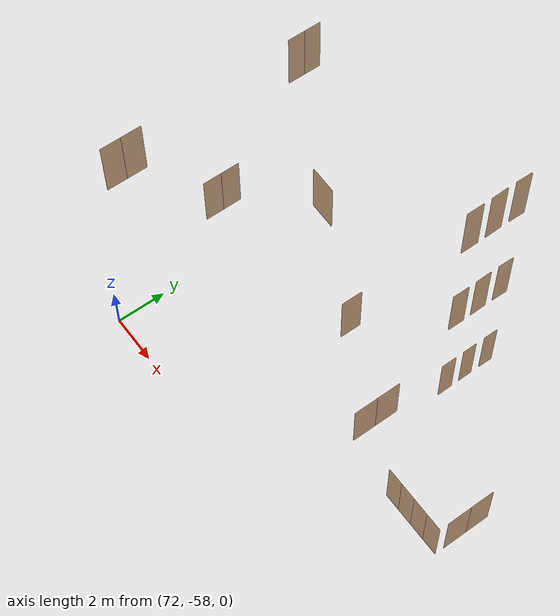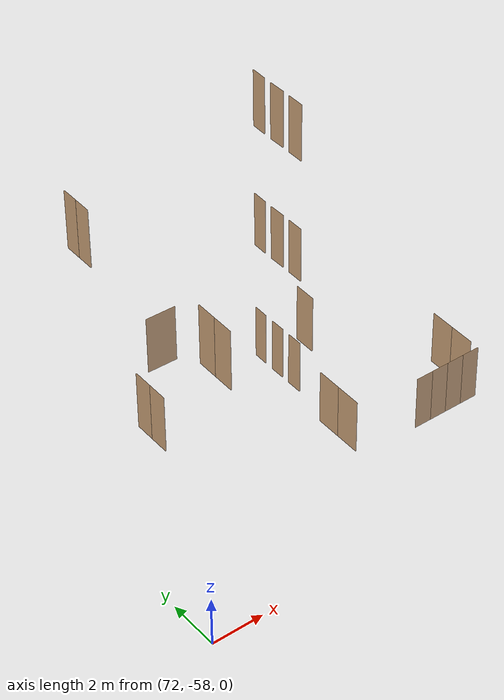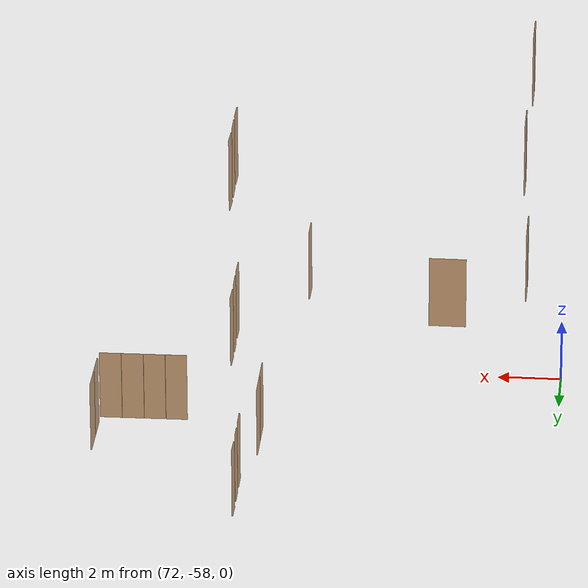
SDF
<sdf version="1.7">
 <world name="sim_world">
  <model name="p85">
   <pose>81.5161958164203 -48.06958682705701 0.0 0 0 1.555900200698381</pose>
   <link name="right">
    <pose>0 0 1.11 0 0 0</pose>
    <visual name="right_visual">
     <geometry><box><size>0.5792701410174352 0.03 2.2</size></box></geometry>
     <material>
      <ambient>0.5 0.25 0 0.6</ambient>
      <diffuse>0.5 0.25 0 0.6</diffuse>
      <pbr><metal><metalness>0.0</metalness></metal></pbr>
     </material>
    </visual>
    <collision name="right_collision">
     <geometry><box><size>0.5792701410174352 0.03 2.2</size></box></geometry>
     <surface><contact><collide_bitmask>0x02</collide_bitmask></contact></surface>
    </collision>
    <inertial>
     <mass>50.0</mass>
     <inertia><ixx>20.17041666666667</ixx><iyy>21.56480790114317</iyy><izz>1.4018912344764973</izz></inertia>
    </inertial>
   </link>
   <joint name="right_joint" type="revolute">
    <parent>world</parent>
    <child>right</child>
    <axis><xyz>0 0 -1</xyz><limit><lower>0</lower><upper>1.57</upper></limit></axis>
    <pose>0.2946350705087176 0 0 0 0 0</pose>
   </joint>
   <plugin name="register_component" filename="libregister_component.so">
    <component name="Door">
     <v_max_door>0.5</v_max_door>
     <a_max_door>0.3</a_max_door>
     <a_nom_door>0.15</a_nom_door>
     <dx_min_door>0.01</dx_min_door>
     <f_max_door>500.0</f_max_door>
     <ros_interface>true</ros_interface>
     <door name="p85" type="SwingDoor" left_joint_name="empty_joint" right_joint_name="right_joint"/>
    </component>
   </plugin>
  </model>
  <model name="p86">
   <pose>81.51474030399105 -49.03233607893103 0.0 0 0 1.580727906492834</pose>
   <link name="right">
    <pose>0 0 1.11 0 0 0</pose>
    <visual name="right_visual">
     <geometry><box><size>0.5807005195245211 0.03 2.2</size></box></geometry>
     <material>
      <ambient>0.5 0.25 0 0.6</ambient>
      <diffuse>0.5 0.25 0 0.6</diffuse>
      <pbr><metal><metalness>0.0</metalness></metal></pbr>
     </material>
    </visual>
    <collision name="right_collision">
     <geometry><box><size>0.5807005195245211 0.03 2.2</size></box></geometry>
     <surface><contact><collide_bitmask>0x02</collide_bitmask></contact></surface>
    </collision>
    <inertial>
     <mass>50.0</mass>
     <inertia><ixx>20.17041666666667</ixx><iyy>21.571721222400207</iyy><izz>1.4088045557335362</izz></inertia>
    </inertial>
   </link>
   <joint name="right_joint" type="revolute">
    <parent>world</parent>
    <child>right</child>
    <axis><xyz>0 0 -1</xyz><limit><lower>0</lower><upper>1.57</upper></limit></axis>
    <pose>0.29535025976226054 0 0 0 0 0</pose>
   </joint>
   <plugin name="register_component" filename="libregister_component.so">
    <component name="Door">
     <v_max_door>0.5</v_max_door>
     <a_max_door>0.3</a_max_door>
     <a_nom_door>0.15</a_nom_door>
     <dx_min_door>0.01</dx_min_door>
     <f_max_door>500.0</f_max_door>
     <ros_interface>true</ros_interface>
     <door name="p86" type="SwingDoor" left_joint_name="empty_joint" right_joint_name="right_joint"/>
    </component>
   </plugin>
  </model>
  <model name="p87">
   <pose>81.5189401795503 -49.98644114248471 0.0 0 0 1.5747964458153239</pose>
   <link name="right">
    <pose>0 0 1.11 0 0 0</pose>
    <visual name="right_visual">
     <geometry><box><size>0.6232974135674922 0.03 2.2</size></box></geometry>
     <material>
      <ambient>0.5 0.25 0 0.6</ambient>
      <diffuse>0.5 0.25 0 0.6</diffuse>
      <pbr><metal><metalness>0.0</metalness></metal></pbr>
     </material>
    </visual>
    <collision name="right_collision">
     <geometry><box><size>0.6232974135674922 0.03 2.2</size></box></geometry>
     <surface><contact><collide_bitmask>0x02</collide_bitmask></contact></surface>
    </collision>
    <inertial>
     <mass>50.0</mass>
     <inertia><ixx>20.17041666666667</ixx><iyy>21.785415273999696</iyy><izz>1.622498607333023</izz></inertia>
    </inertial>
   </link>
   <joint name="right_joint" type="revolute">
    <parent>world</parent>
    <child>right</child>
    <axis><xyz>0 0 -1</xyz><limit><lower>0</lower><upper>1.57</upper></limit></axis>
    <pose>0.3166487067837461 0 0 0 0 0</pose>
   </joint>
   <plugin name="register_component" filename="libregister_component.so">
    <component name="Door">
     <v_max_door>0.5</v_max_door>
     <a_max_door>0.3</a_max_door>
     <a_nom_door>0.15</a_nom_door>
     <dx_min_door>0.01</dx_min_door>
     <f_max_door>500.0</f_max_door>
     <ros_interface>true</ros_interface>
     <door name="p87" type="SwingDoor" left_joint_name="empty_joint" right_joint_name="right_joint"/>
    </component>
   </plugin>
  </model>
  <model name="p139">
   <pose>81.13681816835062 -52.9138988474416 0.0 0 0 -1.5707963267948966</pose>
   <link name="right">
    <pose>0.49677416965423227 0 1.11 0 0 0</pose>
    <visual name="right_visual">
     <geometry><box><size>0.9835483393084645 0.03 2.2</size></box></geometry>
     <material>
      <ambient>0.5 0.25 0 0.6</ambient>
      <diffuse>0.5 0.25 0 0.6</diffuse>
      <pbr><metal><metalness>0.0</metalness></metal></pbr>
     </material>
    </visual>
    <collision name="right_collision">
     <geometry><box><size>0.9835483393084645 0.03 2.2</size></box></geometry>
     <surface><contact><collide_bitmask>0x02</collide_bitmask></contact></surface>
    </collision>
    <inertial>
     <mass>50.0</mass>
     <inertia><ixx>20.17041666666667</ixx><iyy>24.197363898985163</iyy><izz>4.034447232318494</izz></inertia>
    </inertial>
   </link>
   <joint name="right_joint" type="revolute">
    <parent>world</parent>
    <child>right</child>
    <axis><xyz>0 0 -1</xyz><limit><lower>0</lower><upper>1.57</upper></limit></axis>
    <pose>0.49677416965423227 0 0 0 0 0</pose>
   </joint>
   <link name="left">
    <pose>-0.49677416965423227 0 1.11 0 0 0</pose>
    <visual name="left_visual">
     <geometry><box><size>0.9835483393084645 0.03 2.2</size></box></geometry>
     <material>
      <ambient>0.5 0.25 0 0.6</ambient>
      <diffuse>0.5 0.25 0 0.6</diffuse>
      <pbr><metal><metalness>0.0</metalness></metal></pbr>
     </material>
    </visual>
    <collision name="left_collision">
     <geometry><box><size>0.9835483393084645 0.03 2.2</size></box></geometry>
     <surface><contact><collide_bitmask>0x02</collide_bitmask></contact></surface>
    </collision>
    <inertial>
     <mass>50.0</mass>
     <inertia><ixx>20.17041666666667</ixx><iyy>24.197363898985163</iyy><izz>4.034447232318494</izz></inertia>
    </inertial>
   </link>
   <joint name="left_joint" type="revolute">
    <parent>world</parent>
    <child>left</child>
    <axis><xyz>0 0 -1</xyz><limit><lower>-1.57</lower><upper>0</upper></limit></axis>
    <pose>-0.49677416965423227 0 0 0 0 0</pose>
   </joint>
   <plugin name="register_component" filename="libregister_component.so">
    <component name="Door">
     <v_max_door>0.5</v_max_door>
     <a_max_door>0.3</a_max_door>
     <a_nom_door>0.15</a_nom_door>
     <dx_min_door>0.01</dx_min_door>
     <f_max_door>500.0</f_max_door>
     <ros_interface>true</ros_interface>
     <door name="p139" type="DoubleSwingDoor" left_joint_name="left_joint" right_joint_name="right_joint"/>
    </component>
   </plugin>
  </model>
  <model name="p140">
   <pose>84.19443868329833 -54.235970786050814 0.0 0 0 3.141592653589793</pose>
   <link name="right">
    <pose>0.3395677165121036 0 1.11 0 0 0</pose>
    <visual name="right_visual">
     <geometry><box><size>0.6691354330242072 0.03 2.2</size></box></geometry>
     <material>
      <ambient>0.5 0.25 0 0.6</ambient>
      <diffuse>0.5 0.25 0 0.6</diffuse>
      <pbr><metal><metalness>0.0</metalness></metal></pbr>
     </material>
    </visual>
    <collision name="right_collision">
     <geometry><box><size>0.6691354330242072 0.03 2.2</size></box></geometry>
     <surface><contact><collide_bitmask>0x02</collide_bitmask></contact></surface>
    </collision>
    <inertial>
     <mass>50.0</mass>
     <inertia><ixx>20.17041666666667</ixx><iyy>22.03225928220206</iyy><izz>1.8693426155353887</izz></inertia>
    </inertial>
   </link>
   <joint name="right_joint" type="revolute">
    <parent>world</parent>
    <child>right</child>
    <axis><xyz>0 0 -1</xyz><limit><lower>0</lower><upper>1.57</upper></limit></axis>
    <pose>0.3395677165121036 0 0 0 0 0</pose>
   </joint>
   <link name="left">
    <pose>-0.3395677165121036 0 1.11 0 0 0</pose>
    <visual name="left_visual">
     <geometry><box><size>0.6691354330242072 0.03 2.2</size></box></geometry>
     <material>
      <ambient>0.5 0.25 0 0.6</ambient>
      <diffuse>0.5 0.25 0 0.6</diffuse>
      <pbr><metal><metalness>0.0</metalness></metal></pbr>
     </material>
    </visual>
    <collision name="left_collision">
     <geometry><box><size>0.6691354330242072 0.03 2.2</size></box></geometry>
     <surface><contact><collide_bitmask>0x02</collide_bitmask></contact></surface>
    </collision>
    <inertial>
     <mass>50.0</mass>
     <inertia><ixx>20.17041666666667</ixx><iyy>22.03225928220206</iyy><izz>1.8693426155353887</izz></inertia>
    </inertial>
   </link>
   <joint name="left_joint" type="revolute">
    <parent>world</parent>
    <child>left</child>
    <axis><xyz>0 0 -1</xyz><limit><lower>-1.57</lower><upper>0</upper></limit></axis>
    <pose>-0.3395677165121036 0 0 0 0 0</pose>
   </joint>
   <plugin name="register_component" filename="libregister_component.so">
    <component name="Door">
     <v_max_door>0.5</v_max_door>
     <a_max_door>0.3</a_max_door>
     <a_nom_door>0.15</a_nom_door>
     <dx_min_door>0.01</dx_min_door>
     <f_max_door>500.0</f_max_door>
     <ros_interface>true</ros_interface>
     <door name="p140" type="DoubleSwingDoor" left_joint_name="left_joint" right_joint_name="right_joint"/>
    </component>
   </plugin>
  </model>
  <model name="p141">
   <pose>85.56488696631217 -54.235970786050814 0.0 0 0 3.141592653589793</pose>
   <link name="right">
    <pose>0.34565642499481086 0 1.11 0 0 0</pose>
    <visual name="right_visual">
     <geometry><box><size>0.6813128499896217 0.03 2.2</size></box></geometry>
     <material>
      <ambient>0.5 0.25 0 0.6</ambient>
      <diffuse>0.5 0.25 0 0.6</diffuse>
      <pbr><metal><metalness>0.0</metalness></metal></pbr>
     </material>
    </visual>
    <collision name="right_collision">
     <geometry><box><size>0.6813128499896217 0.03 2.2</size></box></geometry>
     <surface><contact><collide_bitmask>0x02</collide_bitmask></contact></surface>
    </collision>
    <inertial>
     <mass>50.0</mass>
     <inertia><ixx>20.17041666666667</ixx><iyy>22.100779998170758</iyy><izz>1.9378633315040867</izz></inertia>
    </inertial>
   </link>
   <joint name="right_joint" type="revolute">
    <parent>world</parent>
    <child>right</child>
    <axis><xyz>0 0 -1</xyz><limit><lower>0</lower><upper>1.57</upper></limit></axis>
    <pose>0.34565642499481086 0 0 0 0 0</pose>
   </joint>
   <link name="left">
    <pose>-0.34565642499481086 0 1.11 0 0 0</pose>
    <visual name="left_visual">
     <geometry><box><size>0.6813128499896217 0.03 2.2</size></box></geometry>
     <material>
      <ambient>0.5 0.25 0 0.6</ambient>
      <diffuse>0.5 0.25 0 0.6</diffuse>
      <pbr><metal><metalness>0.0</metalness></metal></pbr>
     </material>
    </visual>
    <collision name="left_collision">
     <geometry><box><size>0.6813128499896217 0.03 2.2</size></box></geometry>
     <surface><contact><collide_bitmask>0x02</collide_bitmask></contact></surface>
    </collision>
    <inertial>
     <mass>50.0</mass>
     <inertia><ixx>20.17041666666667</ixx><iyy>22.100779998170758</iyy><izz>1.9378633315040867</izz></inertia>
    </inertial>
   </link>
   <joint name="left_joint" type="revolute">
    <parent>world</parent>
    <child>left</child>
    <axis><xyz>0 0 -1</xyz><limit><lower>-1.57</lower><upper>0</upper></limit></axis>
    <pose>-0.34565642499481086 0 0 0 0 0</pose>
   </joint>
   <plugin name="register_component" filename="libregister_component.so">
    <component name="Door">
     <v_max_door>0.5</v_max_door>
     <a_max_door>0.3</a_max_door>
     <a_nom_door>0.15</a_nom_door>
     <dx_min_door>0.01</dx_min_door>
     <f_max_door>500.0</f_max_door>
     <ros_interface>true</ros_interface>
     <door name="p141" type="DoubleSwingDoor" left_joint_name="left_joint" right_joint_name="right_joint"/>
    </component>
   </plugin>
  </model>
  <model name="p142">
   <pose>86.25619981630179 -52.879533199016365 0.0 0 0 -1.5707963267948966</pose>
   <link name="right">
    <pose>0.49139099582234813 0 1.11 0 0 0</pose>
    <visual name="right_visual">
     <geometry><box><size>0.9727819916446963 0.03 2.2</size></box></geometry>
     <material>
      <ambient>0.5 0.25 0 0.6</ambient>
      <diffuse>0.5 0.25 0 0.6</diffuse>
      <pbr><metal><metalness>0.0</metalness></metal></pbr>
     </material>
    </visual>
    <collision name="right_collision">
     <geometry><box><size>0.9727819916446963 0.03 2.2</size></box></geometry>
     <surface><contact><collide_bitmask>0x02</collide_bitmask></contact></surface>
    </collision>
    <inertial>
     <mass>50.0</mass>
     <inertia><ixx>20.17041666666667</ixx><iyy>24.10960334695093</iyy><izz>3.946686680284258</izz></inertia>
    </inertial>
   </link>
   <joint name="right_joint" type="prismatic">
    <parent>world</parent>
    <child>right</child>
    <axis>
     <xyz>1 0 0</xyz>
     <limit><lower>0.0</lower><upper>0.9827819916446963</upper><effort>500.0</effort></limit>
    </axis>
   </joint>
   <link name="left">
    <pose>-0.49139099582234813 0 1.11 0 0 0</pose>
    <visual name="left_visual">
     <geometry><box><size>0.9727819916446963 0.03 2.2</size></box></geometry>
     <material>
      <ambient>0.5 0.25 0 0.6</ambient>
      <diffuse>0.5 0.25 0 0.6</diffuse>
      <pbr><metal><metalness>0.0</metalness></metal></pbr>
     </material>
    </visual>
    <collision name="left_collision">
     <geometry><box><size>0.9727819916446963 0.03 2.2</size></box></geometry>
     <surface><contact><collide_bitmask>0x02</collide_bitmask></contact></surface>
    </collision>
    <inertial>
     <mass>50.0</mass>
     <inertia><ixx>20.17041666666667</ixx><iyy>24.10960334695093</iyy><izz>3.946686680284258</izz></inertia>
    </inertial>
   </link>
   <joint name="left_joint" type="prismatic">
    <parent>world</parent>
    <child>left</child>
    <axis>
     <xyz>1 0 0</xyz>
     <limit><lower>-0.9827819916446963</lower><upper>0.0</upper><effort>500.0</effort></limit>
    </axis>
   </joint>
   <plugin name="register_component" filename="libregister_component.so">
    <component name="Door">
     <v_max_door>0.2</v_max_door>
     <a_max_door>0.2</a_max_door>
     <a_nom_door>0.08</a_nom_door>
     <dx_min_door>0.001</dx_min_door>
     <f_max_door>100.0</f_max_door>
     <ros_interface>true</ros_interface>
     <door name="p142" type="DoubleSlidingDoor" left_joint_name="left_joint" right_joint_name="right_joint"/>
    </component>
   </plugin>
  </model>
  <model name="puerta13">
   <pose>81.513745249565 -48.07732695569584 5.0 0 0 1.5478666507256096</pose>
   <link name="right">
    <pose>0 0 1.11 0 0 0</pose>
    <visual name="right_visual">
     <geometry><box><size>0.6110725600771714 0.03 2.2</size></box></geometry>
     <material>
      <ambient>0.5 0.25 0 0.6</ambient>
      <diffuse>0.5 0.25 0 0.6</diffuse>
      <pbr><metal><metalness>0.0</metalness></metal></pbr>
     </material>
    </visual>
    <collision name="right_collision">
     <geometry><box><size>0.6110725600771714 0.03 2.2</size></box></geometry>
     <surface><contact><collide_bitmask>0x02</collide_bitmask></contact></surface>
    </collision>
    <inertial>
     <mass>50.0</mass>
     <inertia><ixx>20.17041666666667</ixx><iyy>21.722540306996958</iyy><izz>1.5596236403302843</izz></inertia>
    </inertial>
   </link>
   <joint name="right_joint" type="revolute">
    <parent>world</parent>
    <child>right</child>
    <axis><xyz>0 0 -1</xyz><limit><lower>0</lower><upper>1.57</upper></limit></axis>
    <pose>0.3105362800385857 0 0 0 0 0</pose>
   </joint>
   <plugin name="register_component" filename="libregister_component.so">
    <component name="Door">
     <v_max_door>0.5</v_max_door>
     <a_max_door>0.3</a_max_door>
     <a_nom_door>0.15</a_nom_door>
     <dx_min_door>0.01</dx_min_door>
     <f_max_door>500.0</f_max_door>
     <ros_interface>true</ros_interface>
     <door name="puerta13" type="SwingDoor" left_joint_name="empty_joint" right_joint_name="right_joint"/>
    </component>
   </plugin>
  </model>
  <model name="puerta14">
   <pose>81.51269170196096 -49.03495711072932 5.0 0 0 1.5891866132983687</pose>
   <link name="right">
    <pose>0 0 1.11 0 0 0</pose>
    <visual name="right_visual">
     <geometry><box><size>0.6444415349431816 0.03 2.2</size></box></geometry>
     <material>
      <ambient>0.5 0.25 0 0.6</ambient>
      <diffuse>0.5 0.25 0 0.6</diffuse>
      <pbr><metal><metalness>0.0</metalness></metal></pbr>
     </material>
    </visual>
    <collision name="right_collision">
     <geometry><box><size>0.6444415349431816 0.03 2.2</size></box></geometry>
     <surface><contact><collide_bitmask>0x02</collide_bitmask></contact></surface>
    </collision>
    <inertial>
     <mass>50.0</mass>
     <inertia><ixx>20.17041666666667</ixx><iyy>21.897103716499686</iyy><izz>1.7341870498330165</izz></inertia>
    </inertial>
   </link>
   <joint name="right_joint" type="revolute">
    <parent>world</parent>
    <child>right</child>
    <axis><xyz>0 0 -1</xyz><limit><lower>0</lower><upper>1.57</upper></limit></axis>
    <pose>0.3272207674715908 0 0 0 0 0</pose>
   </joint>
   <plugin name="register_component" filename="libregister_component.so">
    <component name="Door">
     <v_max_door>0.5</v_max_door>
     <a_max_door>0.3</a_max_door>
     <a_nom_door>0.15</a_nom_door>
     <dx_min_door>0.01</dx_min_door>
     <f_max_door>500.0</f_max_door>
     <ros_interface>true</ros_interface>
     <door name="puerta14" type="SwingDoor" left_joint_name="empty_joint" right_joint_name="right_joint"/>
    </component>
   </plugin>
  </model>
  <model name="puerta15">
   <pose>81.51761689941151 -49.99496436847256 5.0 0 0 1.5673674510629643</pose>
   <link name="right">
    <pose>0 0 1.11 0 0 0</pose>
    <visual name="right_visual">
     <geometry><box><size>0.6538934844914985 0.03 2.2</size></box></geometry>
     <material>
      <ambient>0.5 0.25 0 0.6</ambient>
      <diffuse>0.5 0.25 0 0.6</diffuse>
      <pbr><metal><metalness>0.0</metalness></metal></pbr>
     </material>
    </visual>
    <collision name="right_collision">
     <geometry><box><size>0.6538934844914985 0.03 2.2</size></box></geometry>
     <surface><contact><collide_bitmask>0x02</collide_bitmask></contact></surface>
    </collision>
    <inertial>
     <mass>50.0</mass>
     <inertia><ixx>20.17041666666667</ixx><iyy>21.948236204418478</iyy><izz>1.785319537751807</izz></inertia>
    </inertial>
   </link>
   <joint name="right_joint" type="revolute">
    <parent>world</parent>
    <child>right</child>
    <axis><xyz>0 0 -1</xyz><limit><lower>0</lower><upper>1.57</upper></limit></axis>
    <pose>0.33194674224574927 0 0 0 0 0</pose>
   </joint>
   <plugin name="register_component" filename="libregister_component.so">
    <component name="Door">
     <v_max_door>0.5</v_max_door>
     <a_max_door>0.3</a_max_door>
     <a_nom_door>0.15</a_nom_door>
     <dx_min_door>0.01</dx_min_door>
     <f_max_door>500.0</f_max_door>
     <ros_interface>true</ros_interface>
     <door name="puerta15" type="SwingDoor" left_joint_name="empty_joint" right_joint_name="right_joint"/>
    </component>
   </plugin>
  </model>
  <model name="puerta19">
   <pose>79.57253737102045 -53.00879959085749 5.0 0 0 -1.5751977953754388</pose>
   <link name="right">
    <pose>0 0 1.11 0 0 0</pose>
    <visual name="right_visual">
     <geometry><box><size>0.8000234858978722 0.03 2.2</size></box></geometry>
     <material>
      <ambient>0.5 0.25 0 0.6</ambient>
      <diffuse>0.5 0.25 0 0.6</diffuse>
      <pbr><metal><metalness>0.0</metalness></metal></pbr>
     </material>
    </visual>
    <collision name="right_collision">
     <geometry><box><size>0.8000234858978722 0.03 2.2</size></box></geometry>
     <surface><contact><collide_bitmask>0x02</collide_bitmask></contact></surface>
    </collision>
    <inertial>
     <mass>50.0</mass>
     <inertia><ixx>20.17041666666667</ixx><iyy>22.8334899082841</iyy><izz>2.6705732416174293</izz></inertia>
    </inertial>
   </link>
   <joint name="right_joint" type="revolute">
    <parent>world</parent>
    <child>right</child>
    <axis><xyz>0 0 1</xyz><limit><lower>0</lower><upper>1.57</upper></limit></axis>
    <pose>0.4050117429489361 0 0 0 0 0</pose>
   </joint>
   <plugin name="register_component" filename="libregister_component.so">
    <component name="Door">
     <v_max_door>0.5</v_max_door>
     <a_max_door>0.3</a_max_door>
     <a_nom_door>0.15</a_nom_door>
     <dx_min_door>0.01</dx_min_door>
     <f_max_door>500.0</f_max_door>
     <ros_interface>true</ros_interface>
     <door name="puerta19" type="SwingDoor" left_joint_name="empty_joint" right_joint_name="right_joint"/>
    </component>
   </plugin>
  </model>
  <model name="puerta62">
   <pose>75.29712047678353 -50.99911772923841 5.0 0 0 3.1214571435934935</pose>
   <link name="right">
    <pose>0 0 1.11 0 0 0</pose>
    <visual name="right_visual">
     <geometry><box><size>1.1084986109559976 0.03 2.2</size></box></geometry>
     <material>
      <ambient>0.5 0.25 0 0.6</ambient>
      <diffuse>0.5 0.25 0 0.6</diffuse>
      <pbr><metal><metalness>0.0</metalness></metal></pbr>
     </material>
    </visual>
    <collision name="right_collision">
     <geometry><box><size>1.1084986109559976 0.03 2.2</size></box></geometry>
     <surface><contact><collide_bitmask>0x02</collide_bitmask></contact></surface>
    </collision>
    <inertial>
     <mass>50.0</mass>
     <inertia><ixx>20.17041666666667</ixx><iyy>25.28653821038074</iyy><izz>5.1236215437140675</izz></inertia>
    </inertial>
   </link>
   <joint name="right_joint" type="revolute">
    <parent>world</parent>
    <child>right</child>
    <axis><xyz>0 0 1</xyz><limit><lower>0</lower><upper>1.57</upper></limit></axis>
    <pose>0.5592493054779988 0 0 0 0 0</pose>
   </joint>
   <plugin name="register_component" filename="libregister_component.so">
    <component name="Door">
     <v_max_door>0.5</v_max_door>
     <a_max_door>0.3</a_max_door>
     <a_nom_door>0.15</a_nom_door>
     <dx_min_door>0.01</dx_min_door>
     <f_max_door>500.0</f_max_door>
     <ros_interface>true</ros_interface>
     <door name="puerta62" type="SwingDoor" left_joint_name="empty_joint" right_joint_name="right_joint"/>
    </component>
   </plugin>
  </model>
  <model name="puerta63">
   <pose>73.00926129582372 -53.64596836932296 5.0 0 0 1.570949385395719</pose>
   <link name="right">
    <pose>0.3658035855549126 0 1.11 0 0 0</pose>
    <visual name="right_visual">
     <geometry><box><size>0.7216071711098252 0.03 2.2</size></box></geometry>
     <material>
      <ambient>0.5 0.25 0 0.6</ambient>
      <diffuse>0.5 0.25 0 0.6</diffuse>
      <pbr><metal><metalness>0.0</metalness></metal></pbr>
     </material>
    </visual>
    <collision name="right_collision">
     <geometry><box><size>0.7216071711098252 0.03 2.2</size></box></geometry>
     <surface><contact><collide_bitmask>0x02</collide_bitmask></contact></surface>
    </collision>
    <inertial>
     <mass>50.0</mass>
     <inertia><ixx>20.17041666666667</ixx><iyy>22.336320455821358</iyy><izz>2.173403789154686</izz></inertia>
    </inertial>
   </link>
   <joint name="right_joint" type="revolute">
    <parent>world</parent>
    <child>right</child>
    <axis><xyz>0 0 -1</xyz><limit><lower>0</lower><upper>1.57</upper></limit></axis>
    <pose>0.3658035855549126 0 0 0 0 0</pose>
   </joint>
   <link name="left">
    <pose>-0.3658035855549126 0 1.11 0 0 0</pose>
    <visual name="left_visual">
     <geometry><box><size>0.7216071711098252 0.03 2.2</size></box></geometry>
     <material>
      <ambient>0.5 0.25 0 0.6</ambient>
      <diffuse>0.5 0.25 0 0.6</diffuse>
      <pbr><metal><metalness>0.0</metalness></metal></pbr>
     </material>
    </visual>
    <collision name="left_collision">
     <geometry><box><size>0.7216071711098252 0.03 2.2</size></box></geometry>
     <surface><contact><collide_bitmask>0x02</collide_bitmask></contact></surface>
    </collision>
    <inertial>
     <mass>50.0</mass>
     <inertia><ixx>20.17041666666667</ixx><iyy>22.336320455821358</iyy><izz>2.173403789154686</izz></inertia>
    </inertial>
   </link>
   <joint name="left_joint" type="revolute">
    <parent>world</parent>
    <child>left</child>
    <axis><xyz>0 0 -1</xyz><limit><lower>-1.57</lower><upper>0</upper></limit></axis>
    <pose>-0.3658035855549126 0 0 0 0 0</pose>
   </joint>
   <plugin name="register_component" filename="libregister_component.so">
    <component name="Door">
     <v_max_door>0.5</v_max_door>
     <a_max_door>0.3</a_max_door>
     <a_nom_door>0.15</a_nom_door>
     <dx_min_door>0.01</dx_min_door>
     <f_max_door>500.0</f_max_door>
     <ros_interface>true</ros_interface>
     <door name="puerta63" type="DoubleSwingDoor" left_joint_name="left_joint" right_joint_name="right_joint"/>
    </component>
   </plugin>
  </model>
  <model name="puerta104">
   <pose>81.514216250224 -48.07742966963468 10.0 0 0 1.5478683612024828</pose>
   <link name="right">
    <pose>0 0 1.11 0 0 0</pose>
    <visual name="right_visual">
     <geometry><box><size>0.6110798189286325 0.03 2.2</size></box></geometry>
     <material>
      <ambient>0.5 0.25 0 0.6</ambient>
      <diffuse>0.5 0.25 0 0.6</diffuse>
      <pbr><metal><metalness>0.0</metalness></metal></pbr>
     </material>
    </visual>
    <collision name="right_collision">
     <geometry><box><size>0.6110798189286325 0.03 2.2</size></box></geometry>
     <surface><contact><collide_bitmask>0x02</collide_bitmask></contact></surface>
    </collision>
    <inertial>
     <mass>50.0</mass>
     <inertia><ixx>20.17041666666667</ixx><iyy>21.722577271257713</iyy><izz>1.559660604591043</izz></inertia>
    </inertial>
   </link>
   <joint name="right_joint" type="revolute">
    <parent>world</parent>
    <child>right</child>
    <axis><xyz>0 0 -1</xyz><limit><lower>0</lower><upper>1.57</upper></limit></axis>
    <pose>0.31053990946431625 0 0 0 0 0</pose>
   </joint>
   <plugin name="register_component" filename="libregister_component.so">
    <component name="Door">
     <v_max_door>0.5</v_max_door>
     <a_max_door>0.3</a_max_door>
     <a_nom_door>0.15</a_nom_door>
     <dx_min_door>0.01</dx_min_door>
     <f_max_door>500.0</f_max_door>
     <ros_interface>true</ros_interface>
     <door name="puerta104" type="SwingDoor" left_joint_name="empty_joint" right_joint_name="right_joint"/>
    </component>
   </plugin>
  </model>
  <model name="puerta105">
   <pose>81.51316432832989 -49.03507101887293 10.0 0 0 1.589188323775252</pose>
   <link name="right">
    <pose>0 0 1.11 0 0 0</pose>
    <visual name="right_visual">
     <geometry><box><size>0.6444491837980857 0.03 2.2</size></box></geometry>
     <material>
      <ambient>0.5 0.25 0 0.6</ambient>
      <diffuse>0.5 0.25 0 0.6</diffuse>
      <pbr><metal><metalness>0.0</metalness></metal></pbr>
     </material>
    </visual>
    <collision name="right_collision">
     <geometry><box><size>0.6444491837980857 0.03 2.2</size></box></geometry>
     <surface><contact><collide_bitmask>0x02</collide_bitmask></contact></surface>
    </collision>
    <inertial>
     <mass>50.0</mass>
     <inertia><ixx>20.17041666666667</ixx><iyy>21.89714479374175</iyy><izz>1.7342281270750788</izz></inertia>
    </inertial>
   </link>
   <joint name="right_joint" type="revolute">
    <parent>world</parent>
    <child>right</child>
    <axis><xyz>0 0 -1</xyz><limit><lower>0</lower><upper>1.57</upper></limit></axis>
    <pose>0.32722459189904285 0 0 0 0 0</pose>
   </joint>
   <plugin name="register_component" filename="libregister_component.so">
    <component name="Door">
     <v_max_door>0.5</v_max_door>
     <a_max_door>0.3</a_max_door>
     <a_nom_door>0.15</a_nom_door>
     <dx_min_door>0.01</dx_min_door>
     <f_max_door>500.0</f_max_door>
     <ros_interface>true</ros_interface>
     <door name="puerta105" type="SwingDoor" left_joint_name="empty_joint" right_joint_name="right_joint"/>
    </component>
   </plugin>
  </model>
  <model name="puerta106">
   <pose>81.51809122543362 -49.995089488376934 10.0 0 0 1.5673691615399012</pose>
   <link name="right">
    <pose>0 0 1.11 0 0 0</pose>
    <visual name="right_visual">
     <geometry><box><size>0.6539012438170483 0.03 2.2</size></box></geometry>
     <material>
      <ambient>0.5 0.25 0 0.6</ambient>
      <diffuse>0.5 0.25 0 0.6</diffuse>
      <pbr><metal><metalness>0.0</metalness></metal></pbr>
     </material>
    </visual>
    <collision name="right_collision">
     <geometry><box><size>0.6539012438170483 0.03 2.2</size></box></geometry>
     <surface><contact><collide_bitmask>0x02</collide_bitmask></contact></surface>
    </collision>
    <inertial>
     <mass>50.0</mass>
     <inertia><ixx>20.17041666666667</ixx><iyy>21.948278486106183</iyy><izz>1.7853618194395118</izz></inertia>
    </inertial>
   </link>
   <joint name="right_joint" type="revolute">
    <parent>world</parent>
    <child>right</child>
    <axis><xyz>0 0 -1</xyz><limit><lower>0</lower><upper>1.57</upper></limit></axis>
    <pose>0.33195062190852415 0 0 0 0 0</pose>
   </joint>
   <plugin name="register_component" filename="libregister_component.so">
    <component name="Door">
     <v_max_door>0.5</v_max_door>
     <a_max_door>0.3</a_max_door>
     <a_nom_door>0.15</a_nom_door>
     <dx_min_door>0.01</dx_min_door>
     <f_max_door>500.0</f_max_door>
     <ros_interface>true</ros_interface>
     <door name="puerta106" type="SwingDoor" left_joint_name="empty_joint" right_joint_name="right_joint"/>
    </component>
   </plugin>
  </model>
  <model name="puerta140">
   <pose>73.00856000960671 -57.13515493743863 10.0 0 0 1.5688102425073696</pose>
   <link name="right">
    <pose>0.3789157608173048 0 1.11 0 0 0</pose>
    <visual name="right_visual">
     <geometry><box><size>0.7478315216346096 0.03 2.2</size></box></geometry>
     <material>
      <ambient>0.5 0.25 0 0.6</ambient>
      <diffuse>0.5 0.25 0 0.6</diffuse>
      <pbr><metal><metalness>0.0</metalness></metal></pbr>
     </material>
    </visual>
    <collision name="right_collision">
     <geometry><box><size>0.7478315216346096 0.03 2.2</size></box></geometry>
     <surface><contact><collide_bitmask>0x02</collide_bitmask></contact></surface>
    </collision>
    <inertial>
     <mass>50.0</mass>
     <inertia><ixx>20.17041666666667</ixx><iyy>22.496883269793067</iyy><izz>2.333966603126399</izz></inertia>
    </inertial>
   </link>
   <joint name="right_joint" type="revolute">
    <parent>world</parent>
    <child>right</child>
    <axis><xyz>0 0 -1</xyz><limit><lower>0</lower><upper>1.57</upper></limit></axis>
    <pose>0.3789157608173048 0 0 0 0 0</pose>
   </joint>
   <link name="left">
    <pose>-0.3789157608173048 0 1.11 0 0 0</pose>
    <visual name="left_visual">
     <geometry><box><size>0.7478315216346096 0.03 2.2</size></box></geometry>
     <material>
      <ambient>0.5 0.25 0 0.6</ambient>
      <diffuse>0.5 0.25 0 0.6</diffuse>
      <pbr><metal><metalness>0.0</metalness></metal></pbr>
     </material>
    </visual>
    <collision name="left_collision">
     <geometry><box><size>0.7478315216346096 0.03 2.2</size></box></geometry>
     <surface><contact><collide_bitmask>0x02</collide_bitmask></contact></surface>
    </collision>
    <inertial>
     <mass>50.0</mass>
     <inertia><ixx>20.17041666666667</ixx><iyy>22.496883269793067</iyy><izz>2.333966603126399</izz></inertia>
    </inertial>
   </link>
   <joint name="left_joint" type="revolute">
    <parent>world</parent>
    <child>left</child>
    <axis><xyz>0 0 -1</xyz><limit><lower>-1.57</lower><upper>0</upper></limit></axis>
    <pose>-0.3789157608173048 0 0 0 0 0</pose>
   </joint>
   <plugin name="register_component" filename="libregister_component.so">
    <component name="Door">
     <v_max_door>0.5</v_max_door>
     <a_max_door>0.3</a_max_door>
     <a_nom_door>0.15</a_nom_door>
     <dx_min_door>0.01</dx_min_door>
     <f_max_door>500.0</f_max_door>
     <ros_interface>true</ros_interface>
     <door name="puerta140" type="DoubleSwingDoor" left_joint_name="left_joint" right_joint_name="right_joint"/>
    </component>
   </plugin>
  </model>
  <model name="puerta208">
   <pose>73.00938256935623 -50.100373638112885 10.0 0 0 1.5704938967766569</pose>
   <link name="right">
    <pose>0.3159689481635039 0 1.11 0 0 0</pose>
    <visual name="right_visual">
     <geometry><box><size>0.6219378963270078 0.03 2.2</size></box></geometry>
     <material>
      <ambient>0.5 0.25 0 0.6</ambient>
      <diffuse>0.5 0.25 0 0.6</diffuse>
      <pbr><metal><metalness>0.0</metalness></metal></pbr>
     </material>
    </visual>
    <collision name="right_collision">
     <geometry><box><size>0.6219378963270078 0.03 2.2</size></box></geometry>
     <surface><contact><collide_bitmask>0x02</collide_bitmask></contact></surface>
    </collision>
    <inertial>
     <mass>50.0</mass>
     <inertia><ixx>20.17041666666667</ixx><iyy>21.77836144536527</iyy><izz>1.6154447786986</izz></inertia>
    </inertial>
   </link>
   <joint name="right_joint" type="revolute">
    <parent>world</parent>
    <child>right</child>
    <axis><xyz>0 0 -1</xyz><limit><lower>0</lower><upper>1.57</upper></limit></axis>
    <pose>0.3159689481635039 0 0 0 0 0</pose>
   </joint>
   <link name="left">
    <pose>-0.3159689481635039 0 1.11 0 0 0</pose>
    <visual name="left_visual">
     <geometry><box><size>0.6219378963270078 0.03 2.2</size></box></geometry>
     <material>
      <ambient>0.5 0.25 0 0.6</ambient>
      <diffuse>0.5 0.25 0 0.6</diffuse>
      <pbr><metal><metalness>0.0</metalness></metal></pbr>
     </material>
    </visual>
    <collision name="left_collision">
     <geometry><box><size>0.6219378963270078 0.03 2.2</size></box></geometry>
     <surface><contact><collide_bitmask>0x02</collide_bitmask></contact></surface>
    </collision>
    <inertial>
     <mass>50.0</mass>
     <inertia><ixx>20.17041666666667</ixx><iyy>21.77836144536527</iyy><izz>1.6154447786986</izz></inertia>
    </inertial>
   </link>
   <joint name="left_joint" type="revolute">
    <parent>world</parent>
    <child>left</child>
    <axis><xyz>0 0 -1</xyz><limit><lower>-1.57</lower><upper>0</upper></limit></axis>
    <pose>-0.3159689481635039 0 0 0 0 0</pose>
   </joint>
   <plugin name="register_component" filename="libregister_component.so">
    <component name="Door">
     <v_max_door>0.5</v_max_door>
     <a_max_door>0.3</a_max_door>
     <a_nom_door>0.15</a_nom_door>
     <dx_min_door>0.01</dx_min_door>
     <f_max_door>500.0</f_max_door>
     <ros_interface>true</ros_interface>
     <door name="puerta208" type="DoubleSwingDoor" left_joint_name="left_joint" right_joint_name="right_joint"/>
    </component>
   </plugin>
  </model>
 </world>
</sdf>
